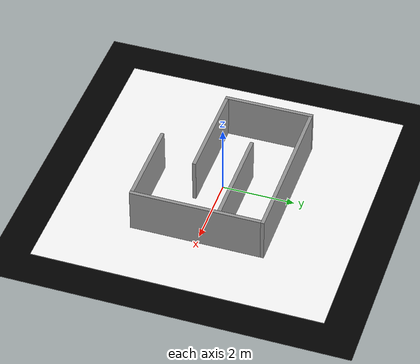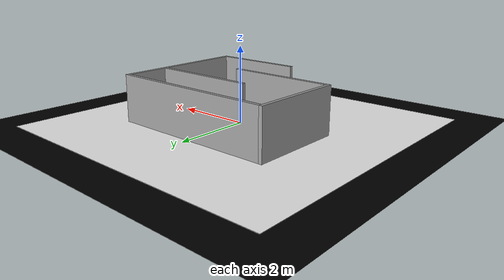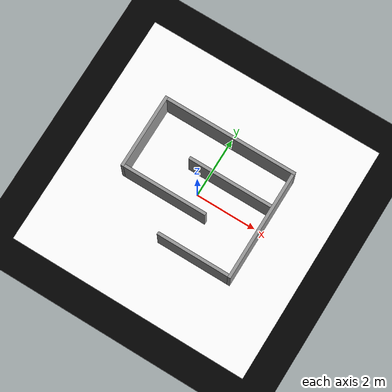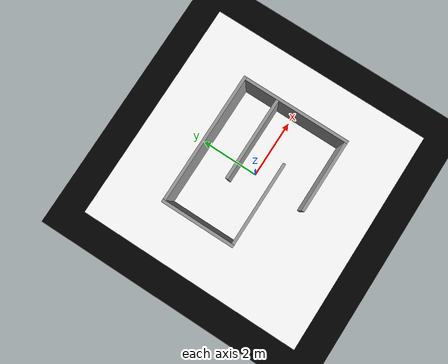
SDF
<sdf version="1.4">
  <world name="default">

    <physics name="1ms" type="ignored">
      <max_step_size>0.001</max_step_size>
      <real_time_factor>1.0</real_time_factor>
    </physics>
    <plugin
      filename="gz-sim-physics-system"
      name="gz::sim::systems::Physics">
    </plugin>
    <plugin
      filename="gz-sim-user-commands-system"
      name="gz::sim::systems::UserCommands">
    </plugin>
    <plugin
      filename="gz-sim-scene-broadcaster-system"
      name="gz::sim::systems::SceneBroadcaster">
    </plugin>

    <plugin
        filename="gz-sim-sensors-system"
        name="gz::sim::systems::Sensors">
        <render_engine>ogre2</render_engine>
    </plugin>

    <scene>
      <ambient>0.4 0.4 0.4 1</ambient>
      <background>0.7 0.7 0.7 1</background>
      <shadows>false</shadows>
    </scene>

    <!-- Arena lights -->
    <include>
    <name>light1</name>
      <uri>model://simple_light</uri>
      <pose>2 2 10 0 0 0</pose>
    </include>

    <include>
    <name>light2</name>
      <uri>model://simple_light</uri>
      <pose>-2 2 10 0 0 0</pose>
    </include>

    <include>
    <name>light3</name>
      <uri>model://simple_light</uri>
      <pose>-2 -2 10 0 0 0</pose>
    </include>

    <include>
    <name>light4</name>
      <uri>model://simple_light</uri>
      <pose>2 -2 10 0 0 0</pose>
    </include>

    <include>
      <uri>model://office_floor</uri>
      <pose>0.0 0.0 0.0 0.0 0.0 -1.5708</pose>
    </include>

    <include>
      <uri>model://avoidance_world_1</uri>
    </include>

    <include>
      <uri>model://goal_marker_5</uri>
      <pose>1.45 1.2 0.001 0 0 0</pose>
    </include>

    <gui fullscreen='0'>
      <camera name='user_camera'>
        <pose>-8.0 -8.0 10.0 0 0.785 0.785</pose>
        <view_controller>orbit</view_controller>
      </camera>
    </gui>

  </world>
</sdf>

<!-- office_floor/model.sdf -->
<sdf version="1.5">
        <model name="puzzlebot_base">
            <static>true</static>
        <link name="link">
            <pose>0 0 0.0 0 0 1.5708 </pose>
            <collision name="collision">
                <geometry>
                <plane>
                    <normal>0 0 1</normal>
                    <size>10.0 10.0</size>
                </plane>
                </geometry>
                <surface>
                <contact>
                    <collide_bitmask>0xffff</collide_bitmask>
                    </contact>
                        <friction>
                        <ode>
                            <mu>100</mu>
                            <mu2>50</mu2>
                        </ode>
                        </friction>
                </surface>
            </collision>
            <visual name="visual">
                <pose>0 0 -0.001 0 0 0</pose>
                    <cast_shadows>false</cast_shadows>
                    <geometry>
                    <plane>
                        <normal>0 0 1</normal>
                        <size>10.0 10.0</size>
                    </plane>
                    </geometry>
                        <material>
                            <ambient>0 0 0 1</ambient>
                            <diffuse>0 0 0 1</diffuse>
                            <specular>0 0 0 1</specular>
                        </material>
                </visual>

                <visual name="mcr2_logo">
                <pose>0 0 0.0 0 0 0</pose>
                <cast_shadows>false</cast_shadows>
                <geometry>
                    <plane>
                    <normal>0 0 1</normal>
                    <size>8.0 8.0</size>
                    </plane>
                </geometry>
                        <material>
                            <ambient>1 1 1 1</ambient>
                            <diffuse>1 1 1 1</diffuse>
                            <specular>1 1 1 1</specular>
                            <pbr>
                                <metal>
                                <albedo_map>model://office_floor/materials/textures/puzzlebot_wood_7.png</albedo_map>
                                <normal_map>model://office_floor/materials/textures/puzzlebot_wood_7.png</normal_map>
                                </metal>
                            </pbr>
                        </material>
                </visual>
            </link>

        </model>
    </sdf>

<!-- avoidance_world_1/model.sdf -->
<sdf version="1.5">
  <model name='office'>

    <static>1</static>

    <link name='Wall_10'>
        <pose>-0.750 -0.6 0.625 0.0 0.0 0.0</pose>

        <visual name='Wall_10_Visual'>
            <pose>0 0 0 0 -0 0</pose>
            <geometry>
                <box>
                    <size>2.8 0.1 1.25</size>
                </box>
            </geometry>
              <material>
                <ambient>0.6 0.6 0.6 1</ambient>
                <diffuse>0.6 0.6 0.6 1</diffuse>
                <specular>0.6 0.6 0.6 1</specular>
              </material>
        <cast_shadows>0</cast_shadows>
      </visual>

      <collision name='Wall_10_Collision'>
        <max_contacts>10</max_contacts>
        <pose>0 0 0.0 0 0 0</pose>
        <geometry>
          <box>
            <size>2.8 0.1 1.25</size>
          </box>
        </geometry>
        <surface>
          <friction>
            <ode>
              <mu>1</mu>
              <mu2>1</mu2>
              <fdir1>0 0 0</fdir1>
              <slip1>0</slip1>
              <slip2>0</slip2>
            </ode>
          </friction>
          <bounce>
            <restitution_coefficient>0</restitution_coefficient>
            <threshold>1e+06</threshold>
          </bounce>
          <contact>
            <collide_without_contact>0</collide_without_contact>
            <collide_without_contact_bitmask>1</collide_without_contact_bitmask>
            <collide_bitmask>1</collide_bitmask>
            <ode>
              <soft_cfm>0</soft_cfm>
              <soft_erp>0.2</soft_erp>
              <kp>1e+13</kp>
              <kd>1</kd>
              <max_vel>0.01</max_vel>
              <min_depth>0</min_depth>
            </ode>
            <bullet>
              <split_impulse>1</split_impulse>
              <split_impulse_penetration_threshold>-0.01</split_impulse_penetration_threshold>
              <soft_cfm>0</soft_cfm>
              <soft_erp>0.2</soft_erp>
              <kp>1e+13</kp>
              <kd>1</kd>
            </bullet>
          </contact>
        </surface>
      </collision>
    </link>

    <link name='Wall_20'>
          <pose>-2.2 0.6 0.625 0.0 0.0 0.0</pose>

          <visual name='Wall_20_Visual'>
              <pose>0 0 0 0 -0 0</pose>
              <geometry>
                  <box>
                      <size>0.1 2.5 1.25</size>
                  </box>
              </geometry>
              <material>
                <ambient>0.6 0.6 0.6 1</ambient>
                <diffuse>0.6 0.6 0.6 1</diffuse>
                <specular>0.6 0.6 0.6 1</specular>
              </material>
          <cast_shadows>0</cast_shadows>
        </visual>

        <collision name='Wall_20_Collision'>
          <max_contacts>10</max_contacts>
          <pose>0 0 0.0 0 0 0</pose>
          <geometry>
            <box>
              <size>0.1 2.5 1.25</size>
            </box>
          </geometry>
          <surface>
            <friction>
              <ode>
                <mu>1</mu>
                <mu2>1</mu2>
                <fdir1>0 0 0</fdir1>
                <slip1>0</slip1>
                <slip2>0</slip2>
              </ode>
            </friction>
            <bounce>
              <restitution_coefficient>0</restitution_coefficient>
              <threshold>1e+06</threshold>
            </bounce>
            <contact>
              <collide_without_contact>0</collide_without_contact>
              <collide_without_contact_bitmask>1</collide_without_contact_bitmask>
              <collide_bitmask>1</collide_bitmask>
              <ode>
                <soft_cfm>0</soft_cfm>
                <soft_erp>0.2</soft_erp>
                <kp>1e+13</kp>
                <kd>1</kd>
                <max_vel>0.01</max_vel>
                <min_depth>0</min_depth>
              </ode>
              <bullet>
                <split_impulse>1</split_impulse>
                <split_impulse_penetration_threshold>-0.01</split_impulse_penetration_threshold>
                <soft_cfm>0</soft_cfm>
                <soft_erp>0.2</soft_erp>
                <kp>1e+13</kp>
                <kd>1</kd>
              </bullet>
            </contact>
          </surface>
        </collision>
    </link>

    <link name='Wall_30'>
        <pose>0.05 1.8 0.625 0.0 0.0 0.0</pose>

        <visual name='Wall_30_Visual'>
            <pose>0 0 0 0 -0 0</pose>
            <geometry>
                <box>
                    <size>4.4 0.1 1.25</size>
                </box>
            </geometry>
              <material>
                <ambient>0.6 0.6 0.6 1</ambient>
                <diffuse>0.6 0.6 0.6 1</diffuse>
                <specular>0.6 0.6 0.6 1</specular>
              </material>
        <cast_shadows>0</cast_shadows>
      </visual>

      <collision name='Wall_30_Collision'>
        <max_contacts>10</max_contacts>
        <pose>0 0 0.0 0 0 0</pose>
        <geometry>
          <box>
            <size>4.4 0.1 1.25</size>
          </box>
        </geometry>
        <surface>
          <friction>
            <ode>
              <mu>1</mu>
              <mu2>1</mu2>
              <fdir1>0 0 0</fdir1>
              <slip1>0</slip1>
              <slip2>0</slip2>
            </ode>
          </friction>
          <bounce>
            <restitution_coefficient>0</restitution_coefficient>
            <threshold>1e+06</threshold>
          </bounce>
          <contact>
            <collide_without_contact>0</collide_without_contact>
            <collide_without_contact_bitmask>1</collide_without_contact_bitmask>
            <collide_bitmask>1</collide_bitmask>
            <ode>
              <soft_cfm>0</soft_cfm>
              <soft_erp>0.2</soft_erp>
              <kp>1e+13</kp>
              <kd>1</kd>
              <max_vel>0.01</max_vel>
              <min_depth>0</min_depth>
            </ode>
            <bullet>
              <split_impulse>1</split_impulse>
              <split_impulse_penetration_threshold>-0.01</split_impulse_penetration_threshold>
              <soft_cfm>0</soft_cfm>
              <soft_erp>0.2</soft_erp>
              <kp>1e+13</kp>
              <kd>1</kd>
            </bullet>
          </contact>
        </surface>
      </collision>
    </link>

    <link name='Wall_40'>
        <pose>2.2 -0.05 0.625 0.0 0.0 0.0</pose>

        <visual name='Wall_40_Visual'>
            <pose>0 0 0 0 -0 0</pose>
            <geometry>
                <box>
                    <size>0.1 3.6 1.25</size>
                </box>
            </geometry>
              <material>
                <ambient>0.6 0.6 0.6 1</ambient>
                <diffuse>0.6 0.6 0.6 1</diffuse>
                <specular>0.6 0.6 0.6 1</specular>
              </material>
        <cast_shadows>0</cast_shadows>
      </visual>

      <collision name='Wall_40_Collision'>
        <max_contacts>10</max_contacts>
        <pose>0 0 0.0 0 0 0</pose>
        <geometry>
          <box>
            <size>0.1 3.6 1.25</size>
          </box>
        </geometry>
        <surface>
          <friction>
            <ode>
              <mu>1</mu>
              <mu2>1</mu2>
              <fdir1>0 0 0</fdir1>
              <slip1>0</slip1>
              <slip2>0</slip2>
            </ode>
          </friction>
          <bounce>
            <restitution_coefficient>0</restitution_coefficient>
            <threshold>1e+06</threshold>
          </bounce>
          <contact>
            <collide_without_contact>0</collide_without_contact>
            <collide_without_contact_bitmask>1</collide_without_contact_bitmask>
            <collide_bitmask>1</collide_bitmask>
            <ode>
              <soft_cfm>0</soft_cfm>
              <soft_erp>0.2</soft_erp>
              <kp>1e+13</kp>
              <kd>1</kd>
              <max_vel>0.01</max_vel>
              <min_depth>0</min_depth>
            </ode>
            <bullet>
              <split_impulse>1</split_impulse>
              <split_impulse_penetration_threshold>-0.01</split_impulse_penetration_threshold>
              <soft_cfm>0</soft_cfm>
              <soft_erp>0.2</soft_erp>
              <kp>1e+13</kp>
              <kd>1</kd>
            </bullet>
          </contact>
        </surface>
      </collision>
    </link>

    <link name='Wall_50'>
        <pose>0.95 -1.8 0.625 0.0 0.0 0.0</pose>

        <visual name='Wall_50_Visual'>
            <pose>0 0 0 0 -0 0</pose>
            <geometry>
                <box>
                    <size>2.4 0.1 1.25</size>
                </box>
            </geometry>
              <material>
                <ambient>0.6 0.6 0.6 1</ambient>
                <diffuse>0.6 0.6 0.6 1</diffuse>
                <specular>0.6 0.6 0.6 1</specular>
              </material>
        <cast_shadows>0</cast_shadows>
      </visual>

      <collision name='Wall_50_Collision'>
        <max_contacts>10</max_contacts>
        <pose>0 0 0.0 0 0 0</pose>
        <geometry>
          <box>
            <size>2.4 0.1 1.25</size>
          </box>
        </geometry>
        <surface>
          <friction>
            <ode>
              <mu>1</mu>
              <mu2>1</mu2>
              <fdir1>0 0 0</fdir1>
              <slip1>0</slip1>
              <slip2>0</slip2>
            </ode>
          </friction>
          <bounce>
            <restitution_coefficient>0</restitution_coefficient>
            <threshold>1e+06</threshold>
          </bounce>
          <contact>
            <collide_without_contact>0</collide_without_contact>
            <collide_without_contact_bitmask>1</collide_without_contact_bitmask>
            <collide_bitmask>1</collide_bitmask>
            <ode>
              <soft_cfm>0</soft_cfm>
              <soft_erp>0.2</soft_erp>
              <kp>1e+13</kp>
              <kd>1</kd>
              <max_vel>0.01</max_vel>
              <min_depth>0</min_depth>
            </ode>
            <bullet>
              <split_impulse>1</split_impulse>
              <split_impulse_penetration_threshold>-0.01</split_impulse_penetration_threshold>
              <soft_cfm>0</soft_cfm>
              <soft_erp>0.2</soft_erp>
              <kp>1e+13</kp>
              <kd>1</kd>
            </bullet>
          </contact>
        </surface>
      </collision>
    </link>

    <link name='Wall_60'>
        <pose>0.75 0.6 0.625 0.0 0.0 0.0</pose>

        <visual name='Wall_60_Visual'>
            <pose>0 0 0 0 -0 0</pose>
            <geometry>
                <box>
                    <size>2.8 0.1 1.25</size>
                </box>
            </geometry>
              <material>
                <ambient>0.6 0.6 0.6 1</ambient>
                <diffuse>0.6 0.6 0.6 1</diffuse>
                <specular>0.6 0.6 0.6 1</specular>
              </material>
        <cast_shadows>0</cast_shadows>
      </visual>

      <collision name='Wall_60_Collision'>
        <max_contacts>10</max_contacts>
        <pose>0 0 0.0 0 0 0</pose>
        <geometry>
          <box>
            <size>2.8 0.1 1.25</size>
          </box>
        </geometry>
        <surface>
          <friction>
            <ode>
              <mu>1</mu>
              <mu2>1</mu2>
              <fdir1>0 0 0</fdir1>
              <slip1>0</slip1>
              <slip2>0</slip2>
            </ode>
          </friction>
          <bounce>
            <restitution_coefficient>0</restitution_coefficient>
            <threshold>1e+06</threshold>
          </bounce>
          <contact>
            <collide_without_contact>0</collide_without_contact>
            <collide_without_contact_bitmask>1</collide_without_contact_bitmask>
            <collide_bitmask>1</collide_bitmask>
            <ode>
              <soft_cfm>0</soft_cfm>
              <soft_erp>0.2</soft_erp>
              <kp>1e+13</kp>
              <kd>1</kd>
              <max_vel>0.01</max_vel>
              <min_depth>0</min_depth>
            </ode>
            <bullet>
              <split_impulse>1</split_impulse>
              <split_impulse_penetration_threshold>-0.01</split_impulse_penetration_threshold>
              <soft_cfm>0</soft_cfm>
              <soft_erp>0.2</soft_erp>
              <kp>1e+13</kp>
              <kd>1</kd>
            </bullet>
          </contact>
        </surface>
      </collision>
    </link>

  </model>
  </sdf>

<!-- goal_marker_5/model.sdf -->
<sdf version="1.5">
        <model name="goal_marker_5">
            <static>true</static>
                <link name="link">
                    <pose>0 0 0 0 0 0</pose>
                    <visual name="visual">
                        <cast_shadows>false</cast_shadows>
                        <geometry>
                            <plane>
                                    <normal>0 0 1</normal>
                                    <size>0.4 0.4</size>
                            </plane>
                        </geometry>
                        <material>
                            <ambient>1 1 1 1</ambient>
                            <diffuse>1 1 1 1</diffuse>
                            <specular>1 1 1 1</specular>
                            <pbr>
                                <metal>
                                <albedo_map>model://goal_marker_5/materials/textures/mcr2_goal_5.png</albedo_map>
                                <normal_map>model://goal_marker_5/materials/textures/mcr2_goal_5.png</normal_map>
                                </metal>
                            </pbr>
                        </material>
                    </visual>
                </link>
        </model>
    </sdf>
